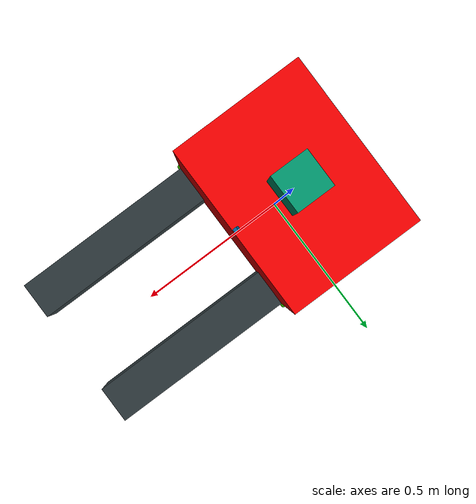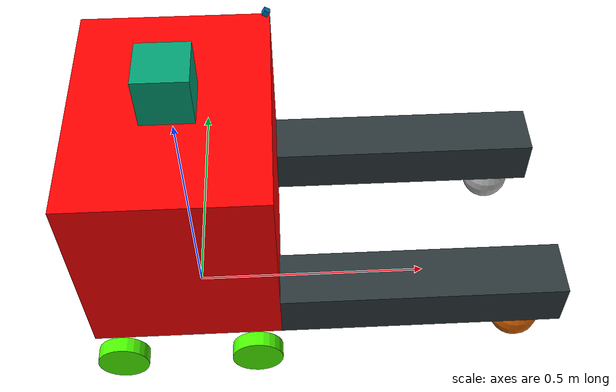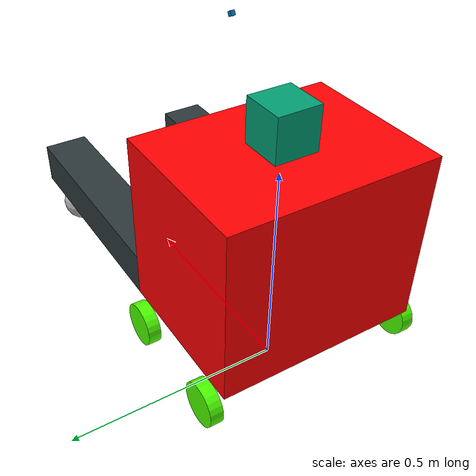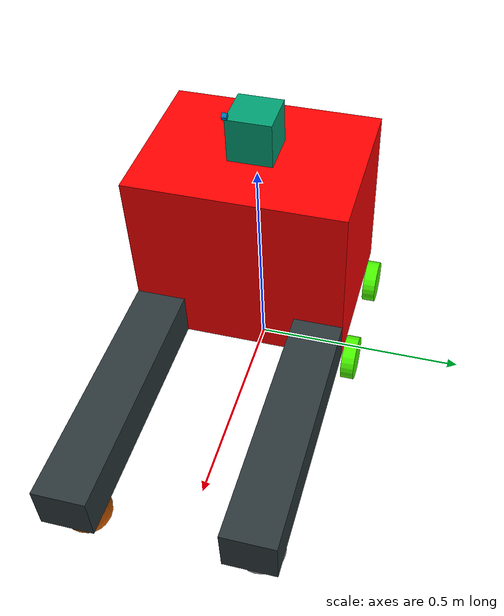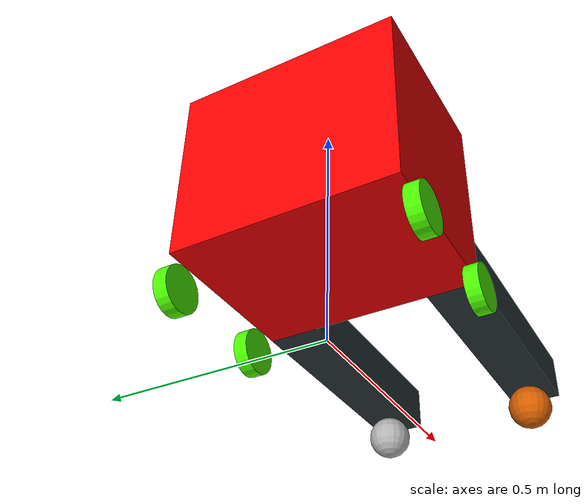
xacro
<?xml version="1.0"?>

<robot xmlns:xacro="http://ros.org/wiki/xacro" name="apjr">
    <!-- ################################### Definitions  #####################################-->

    <xacro:include filename="$(find apjr_bringup)/robot_description/urdf/apjr.gazebo"/>
    <xacro:include filename="$(find apjr_bringup)/robot_description/urdf/physicalProperties.xacro"/>
    <xacro:include filename="$(find apjr_bringup)/robot_description/urdf/functions.xacro"/>
    <xacro:include filename="$(find apjr_bringup)/robot_description/urdf/joints.xacro"/>
    <xacro:include filename="$(find apjr_bringup)/robot_description/urdf/transmission.xacro"/>

    <!-- ################################### base_footprint #####################################-->
    <!-- base_footprint is a fictious link(frame) that is on the ground right below base_link origin -->
    <!-- It is necessary as gazebo does not support inertia for the root link -->
    <!-- Do not call it cs as it is reserved for robot that must be fixed to the world -->

   <link name="base_footprint">
    </link>

    <!-- ################################### Chassis Link #####################################-->

    <link name="chassis">
        <inertial>
            <xacro:chassis_inertial/>
        </inertial>
        <visual name="chassis">
            <xacro:chassis_geometry/>
            <material name="">
                <color rgba="1.0 0.0 0.0 1.0"/>
                <texture filename=""/>
            </material>
        </visual>
        <collision>
            <xacro:chassis_geometry/>
        </collision>
    </link>
    <xacro:fixed_offset_joint parent="base_footprint" child="chassis" offset="0 0 ${chassisHeight/2 + 0.16}"/>

     <!-- ################################### Right Fork Caster Wheel link #####################################-->

    <link name="right_chassis_caster_wheel">
        <inertial>
            <xacro:driveWheel_inertial/>
        </inertial>
        <visual name="right_chassis_caster_wheel">
            <xacro:driveWheel_geometry/>
            <material name="">
                <color rgba="0.3 1.0 0.0 1.0"/>
                <texture filename=""/>
            </material>
        </visual>
        <collision>
            <xacro:driveWheel_geometry/>
            <surface>
                <friction>
                    <ode>
                    <mu>0</mu>
                    <mu2>0</mu2>
                    <slip1>0.0</slip1>
                    <slip2>0.0</slip2>
                    </ode>
                </friction>
                <contact>
                    <ode>
                    <kp>1e15</kp>
                    <kd>1e13</kd>
                    </ode>
                </contact>
            </surface>
        </collision>
    </link>
    <xacro:wheel_joint parent="chassis" child="right_chassis_caster_wheel" offset="${-chassisLength/2 + 0.05} ${-chassisWidth/2 - wheelWidth/2}  ${-chassisHeight/2 - wheelRadius}" axis="0 1 0"/>
    <xacro:wheel_transmission wheel="right_chassis_caster_wheel"/>
         <!-- ################################### Right Fork Caster Wheel link #####################################-->

        <link name="left_chassis_caster_wheel">
        <inertial>
            <xacro:driveWheel_inertial/>
        </inertial>
        <visual name="left_chassis_caster_wheel">
            <xacro:driveWheel_geometry/>
            <material name="">
                <color rgba="0.3 1.0 0.0 1.0"/>
                <texture filename=""/>
            </material>
        </visual>
        <collision>
            <xacro:driveWheel_geometry/>
            <surface>
                <friction>
                    <ode>
                    <mu>0</mu>
                    <mu2>0</mu2>
                    <slip1>0.0</slip1>
                    <slip2>0.0</slip2>
                    </ode>
                </friction>
                <contact>
                    <ode>
                    <kp>1e15</kp>
                    <kd>1e13</kd>
                    </ode>
                </contact>
            </surface>
        </collision>
    </link>
    <xacro:wheel_joint parent="chassis" child="left_chassis_caster_wheel" offset="${-chassisLength/2 + 0.05} ${chassisWidth/2 + wheelWidth/2}  ${-chassisHeight/2 - wheelRadius}" axis="0 1 0"/>
    <xacro:wheel_transmission wheel="left_chassis_caster_wheel"/>
    <!-- ################################### Right Fork Link #####################################-->

    <link name="fork_right">
        <inertial>
            <xacro:fork_inertial/>
        </inertial>
        <visual name="fork_right">
            <xacro:fork_geometry/>
            <material name="">
                <color rgba="0.173 0.216 0.230 1.0"/>
                <texture filename=""/>
            </material>
        </visual>
        <collision>
            <xacro:fork_geometry/>
        </collision>
    </link>
    <xacro:fixed_offset_joint parent="chassis" child="fork_right" offset="${chassisLength/2 + forkLength/2} ${-chassisWidth/2 + forkWidth/2} ${-chassisHeight/2 + forkHeight/2}"/>
        <!-- ################################### Right Fork Caster Wheel link #####################################-->

    <link name="right_fork_caster_wheel">
        <inertial>
            <xacro:casterWheel_inertial/>
        </inertial>
        <visual name="right_fork_caster_wheel">
            <xacro:casterWheel_geometry/>
        </visual>
        <collision name="right_fork_caster_wheel">
            <xacro:casterWheel_geometry/>
            <surface>
            <friction>
                <ode>
                <mu>0</mu>
                <mu2>0</mu2>
                <slip1>0.0</slip1>
                <slip2>0.0</slip2>
                </ode>
            </friction>
            </surface>
        </collision>
    </link>
    <xacro:wheel_joint parent="chassis" child="right_fork_caster_wheel" offset="${chassisLength/2 + forkLength/2 + 0.2} ${-chassisWidth/2 + forkWidth/2} ${-chassisHeight/2 + casterRadius -wheelRadius*2}" axis="0 1 0"/>

    <!-- ################################### Left Fork Link #####################################-->

    <link name="fork_left">
        <inertial>
            <xacro:fork_inertial/>
        </inertial>
        <visual name="fork_left">
            <xacro:fork_geometry/>
            <material name="">
                <color rgba="0.173 0.216 0.230 1.0"/>
                <texture filename=""/>
            </material>
        </visual>
        <collision>
            <xacro:fork_geometry/>
        </collision>

    </link>
    <xacro:fixed_offset_joint parent="chassis" child="fork_left" offset="${chassisLength/2 + forkLength/2} ${chassisWidth/2 - forkWidth/2} ${-chassisHeight/2 + forkHeight/2}"/>
    <!-- ################################### Left Fork Caster Wheel link #####################################-->

    <link name="left_fork_caster_wheel">
        <inertial>
            <xacro:casterWheel_inertial/>
        </inertial>
        <visual name="left_fork_caster_wheel">
            <xacro:casterWheel_geometry/>
        </visual>
        <collision name="left_fork_caster_wheel">
            <xacro:casterWheel_geometry/>
            <surface>
            <friction>
                <ode>
                <mu>0</mu>
                <mu2>0</mu2>
                <slip1>1.0</slip1>
                <slip2>1.0</slip2>
                </ode>
            </friction>
            </surface>
        </collision>
    </link>
    <xacro:wheel_joint parent="chassis" child="left_fork_caster_wheel" offset="${chassisLength/2 + forkLength/2 + 0.2} ${chassisWidth/2 - forkWidth/2} ${-chassisHeight/2 + casterRadius -wheelRadius*2}" axis="0 1 0"/>

    <!-- ################################### Shaft link #####################################-->

    <!-- ################################### Hinge link #####################################-->

    <!-- ################################### Drive Wheel link #####################################-->

    <link name="drive_wheel">
        <inertial>
            <xacro:driveWheel_inertial/>
        </inertial>
        <visual name="drive_wheel">
            <xacro:driveWheel_geometry/>
            <material name="">
                <color rgba="0.3 1.0 0.0 1.0"/>
                <texture filename=""/>
            </material>
        </visual>
        <collision>
            <xacro:driveWheel_geometry/>
            <surface>
                <friction>
                    <ode>
                    <mu>0</mu>
                    <mu2>0</mu2>
                    <slip1>0.0</slip1>
                    <slip2>0.0</slip2>
                    </ode>
                </friction>
                <contact>
                    <ode>
                    <kp>1e15</kp>
                    <kd>1e13</kd>
                    </ode>
                </contact>
            </surface>
        </collision>
    </link>
	<xacro:wheel_transmission wheel="drive_wheel"/>
        <!-- ################################### Drive Wheel Right link #####################################-->

    <link name="drive_wheel_right">
        <inertial>
            <xacro:driveWheel_inertial/>
        </inertial>
        <visual name="drive_wheel_right">
            <xacro:driveWheel_geometry/>
            <material name="">
                <color rgba="0.3 1.0 0.0 1.0"/>
                <texture filename=""/>
            </material>
        </visual>
        <collision>
            <xacro:driveWheel_geometry/>
            <surface>
                <friction>
                    <ode>
                    <mu>0</mu>
                    <mu2>0</mu2>
                    <slip1>0.0</slip1>
                    <slip2>0.0</slip2>
                    </ode>
                </friction>
                <contact>
                    <ode>
                    <kp>1e15</kp>
                    <kd>1e13</kd>
                    </ode>
                </contact>
            </surface>
        </collision>
    </link>
	<xacro:wheel_transmission wheel="drive_wheel_right"/>

    <!-- ################################### Joints #####################################-->

    <joint name="drive_wheel_joint" type="continuous">
        <origin xyz="${chassisLength/2 - 0.05} ${chassisWidth/2 + wheelWidth/2}  ${-chassisHeight/2 - wheelRadius}" rpy="0 0 0"/>
        <parent link="chassis"/>
        <child link="drive_wheel"/>
        <axis xyz="0.0 1.0 0.0"/>

    </joint>

    <joint name="drive_wheel_right_joint" type="continuous">
        <origin xyz="${chassisLength/2 - 0.05} ${-chassisWidth/2 - wheelWidth/2}  ${-chassisHeight/2 - wheelRadius}" rpy="0 0 0"/>
        <parent link="chassis"/>
        <child link="drive_wheel_right"/>
        <axis xyz="0.0 1.0 0.0"/>

    </joint>
    <!-- ################################### base_scan Link #####################################-->
    <!-- was base_scan -->

    <link name="laser">
    <collision>
      <origin xyz="0 0 0" rpy="0 0 0"/>
      <geometry>
    <box size="0.1 0.1 0.1"/>
      </geometry>
    </collision>

    <visual>
      <origin xyz="0 0 0" rpy="0 0 0"/>
      <geometry>
            <box size="0.1 0.1 0.1"/>
      </geometry>
    </visual>

    <inertial>
      <mass value="1e-5" />
      <origin xyz="0 0 0" rpy="0 0 0"/>
      <inertia ixx="1e-6" ixy="0" ixz="0" iyy="1e-6" iyz="0" izz="1e-6" />
    </inertial>
  </link>

  <joint name="hokuyo_joint" type="fixed">
        <axis xyz="0 1 0" />
        <origin xyz="0 0 ${chassisHeight/2 + 0.05}" rpy="0 0 0"/>
        <parent link="chassis"/>
        <child link="laser"/>
    </joint>

<joint name="imu_joint" type="fixed">
    <parent link="chassis"/>
    <child link="imu_link"/>
    <origin xyz="0 0 0" rpy="0 0 0"/>
</joint>

  <link name="imu_link"/>

<!-- ################################### Camera  #####################################-->
  <joint name="camera_joint" type="fixed">
    <origin xyz="${chassisLength/2} 0.0 ${chassisHeight}" rpy="0 0.5236 0"/>
    <parent link="chassis"/>
    <child link="camera_link"/>
  </joint>

  <link name="camera_link">
    <collision>
      <origin xyz="0.0 0.0 0.0" rpy="0 0 0"/>
      <geometry>
        <box size="0.01 0.01 0.01"/>
      </geometry>
    </collision>
    <visual>
      <origin xyz="0 0 0" rpy="0 0 0"/>
      <geometry>
            <box size="0.01 0.01 0.01"/>
      </geometry>
      </visual>
  </link>

</robot>

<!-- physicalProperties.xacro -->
<robot xmlns:xacro="http://ros.org/wiki/xacro" name="apjr">

    <xacro:property name="chassisHeight" value="0.4"/>
    <xacro:property name="chassisLength" value=".365"/>
    <xacro:property name="chassisWidth" value="0.475"/>
    <xacro:property name="chassisMass" value="40"/>

    <xacro:property name="forkHeight" value="0.1"/>
    <xacro:property name="forkLength" value="0.55"/>
    <xacro:property name="forkWidth" value="0.11"/>
    <xacro:property name="forkMass" value="10"/>

    <xacro:property name="casterRadius" value="0.05"/>
    <xacro:property name="casterMass" value="3"/>

    <xacro:property name="wheelWidth" value="0.03"/>
    <xacro:property name="wheelRadius" value="0.05"/>
    <xacro:property name="wheelPos" value="0.2"/>
    <xacro:property name="wheelMass" value="1"/>

    <!-- Chassis -->
	<xacro:macro name="chassis_geometry">
		<origin xyz="0 0 0" rpy="0 0 0" /> <!-- origin (0,0,0) is in the center of the box -->
		<geometry>
			<box size="${chassisLength} ${chassisWidth} ${chassisHeight}"/> <!-- 50x50x30 mm, Please confirm against 3D drawings -->
		</geometry>
	</xacro:macro>
	<xacro:macro name="chassis_inertial">
		<origin xyz="0 0 0" rpy="0 0 0" /> <!-- origin (0,0,0) is in the center of the box -->
        <mass value="${chassisMass}"/>
		<xacro:box_inertial mass="${chassisMass}" length="${chassisLength}" width="${chassisWidth}" height="${chassisHeight}" />
	</xacro:macro>

    <!-- Caster Wheel -->
	<xacro:macro name="casterWheel_geometry">
		 <origin xyz="0.0 0.0 0.0" rpy="0 0 0"/>
        <geometry>
            <sphere radius="${casterRadius}"/>
        </geometry>
	</xacro:macro>
	<xacro:macro name="casterWheel_inertial">
		<origin xyz="0.0 0.0 0.0" rpy="0 0 0"/>
        <mass value="${casterMass}"/>
		<xacro:shpere_inertial mass="${casterMass}" radius="${casterRadius}" />
	</xacro:macro>

    <!-- Forks -->
	<xacro:macro name="fork_geometry">
		<origin xyz="0 0 0" rpy="0 0 0" /> <!-- origin (0,0,0) is in the center of the box -->
		<geometry>
			<box size="${forkLength} ${forkWidth} ${forkHeight}"/> <!-- 50x50x30 mm, Please confirm against 3D drawings -->
		</geometry>
	</xacro:macro>
	<xacro:macro name="fork_inertial">
		<origin xyz="0 0 0" rpy="0 0 0" /> <!-- origin (0,0,0) is in the center of the box -->
        <mass value="${forkMass}"/>
		<xacro:box_inertial mass="${forkMass}" length="${forkLength}" width="${forkWidth}" height="${forkHeight}" />
	</xacro:macro>

    <!-- Drive Wheel -->
	<xacro:macro name="driveWheel_geometry">
        <origin xyz="0.0 0.0 0.0" rpy="1.5707 0 0"/>
        <geometry>
            <cylinder radius="${wheelRadius}" length="${wheelWidth}"/>
        </geometry>
	</xacro:macro>
	<xacro:macro name="driveWheel_inertial">
        <origin xyz="0.0 0.0 0.0" rpy="1.5707 0 0"/>
        <mass value="${wheelMass}"/>
		<xacro:cylinder_inertial mass="${wheelMass}" radius="${wheelRadius}" length="${wheelWidth}" />
	</xacro:macro>

	<!-- Hinge -->
	<xacro:macro name="hinge_geometry">
		<origin xyz="0 0 0" rpy="0 0 0" />
		<geometry>
			<sphere radius="0.015"/>
		</geometry>
	</xacro:macro>
	<xacro:macro name="hinge_inertial">
		<origin xyz="0 0 0" rpy="0 0 0" />
		<mass value="0.05" />
		<xacro:shpere_inertial mass="0.05" radius="0.015" />

	</xacro:macro>
</robot>

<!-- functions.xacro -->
<robot xmlns:xacro="http://ros.org/wiki/xacro" name="apjr">

	<!-- Based on https://en.wikipedia.org/wiki/List_of_moments_of_inertia -->
	<xacro:macro name="box_inertial" params="mass width length height">
		<mass value="${mass}" />
		<inertia ixx="${1/12*mass*(width*width+height*height)}"
			 ixy="0"
			 ixz="0"
			 iyy="${1/12*mass*(length*length+height*height)}"
			 iyz="0"
			 izz="${1/12*mass*(width*width+length*length) *0.1}"
		/>
	</xacro:macro>

	<xacro:macro name="cylinder_inertial" params="mass radius length">
		<mass value="${mass}" />
		<inertia ixx="${1/12*mass*(3*radius*radius+length*length)}"
			 ixy="0"
			 ixz="0"
			 iyy="${1/12*mass*(3*radius*radius+length*length)}"
			 iyz="0"
			 izz="${1/2*mass*radius*radius}"
		/>
	</xacro:macro>

    <xacro:macro name="shpere_inertial" params="mass radius">
		<mass value="${mass}" />
		<inertia ixx="${2/5*mass*(radius*radius)}"
			 ixy="0"
			 ixz="0"
			 iyy="${2/5*mass*(radius*radius)}"
			 iyz="0"
			 izz="${2/5*mass*(radius*radius)}"
		/>
	</xacro:macro>

</robot>

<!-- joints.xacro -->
<robot xmlns:xacro="http://ros.org/wiki/xacro" name="apjr">

	<xacro:macro name="fixed_offset_joint" params="parent child offset">
		<joint name="${parent}_to_${child}" type="fixed">
			<parent link="${parent}"/>
			<child link="${child}"/>
			<origin xyz="${offset}" rpy="0 0 0" /> <!-- offset from parent to child, so with direction based in parent frame -->
            <axis xyz="0 0 0"/>
		</joint>
	</xacro:macro>

	<xacro:macro name="hinge_joint" params="parent child offset">
		<joint name="${child}_joint" type="revolute"> <!-- revolute is a joint with a range limited motion around its' axis -->
			<parent link="${parent}"/>
			<child link="${child}"/>
			<origin xyz="${offset}" rpy="0 0 0" /> <!-- offset from parent to child, so with direction based in parent frame -->
			<axis xyz="0 0 1"/>
            <limit lower="0" upper="0" effort="100000" velocity="1000.0"/> <!-- effeort is similar to torque/acceleration -->
			<!-- friction - The physical static friction. For prismatic joints, the units are Newtons. For revolving joints, the units are Newton meters. -->
			<!-- damping - The physical damping value. For prismatic joints, the units are Newton seconds per meter. For revolving joints, Newton meter secons per radian. -->
		</joint>
	</xacro:macro>

	<xacro:macro name="wheel_joint" params="parent child offset axis">
		<joint name="${child}_joint" type="continuous"> <!-- continuous is a joint of continous motion around its' axis -->
			<parent link="${parent}"/>
			<child link="${child}"/>
			<origin xyz="${offset}" rpy="0 0 0" /> <!-- offset from parent to child, so with direction based in parent frame -->
			<axis xyz="${axis}"/>
			<!-- friction - The physical static friction. For prismatic joints, the units are Newtons. For revolving joints, the units are Newton meters. -->
			<!-- damping - The physical damping value. For prismatic joints, the units are Newton seconds per meter. For revolving joints, Newton meter secons per radian. -->
            <limit lower="0" upper="0" effort="100000" velocity="1000.0"/>
		</joint>
	</xacro:macro>

</robot>
